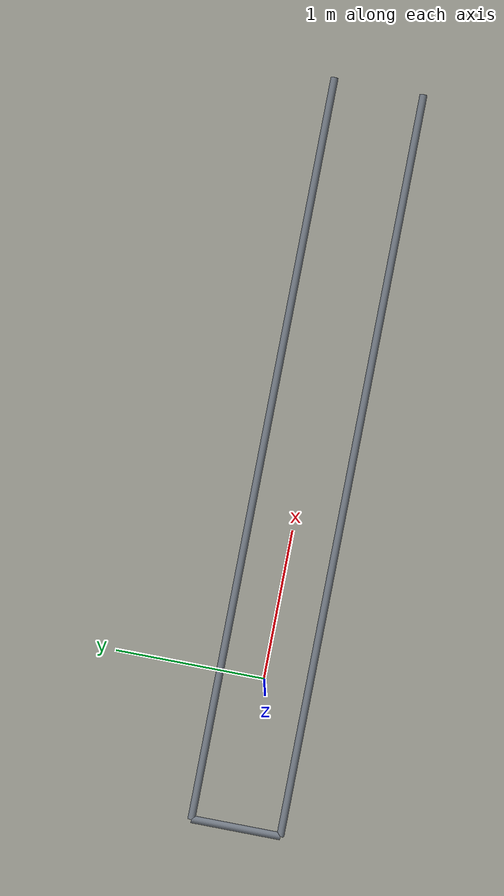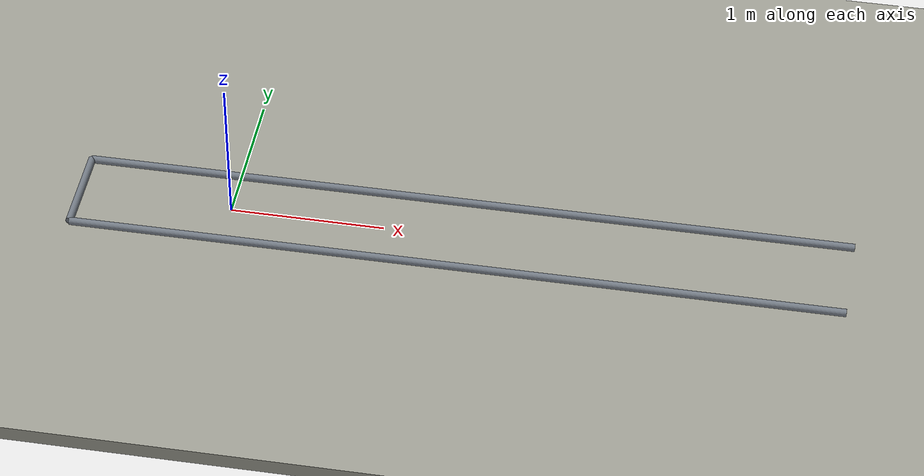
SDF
<?xml version="1.0"?>
<sdf version="1.6">
  <world name="u_rail_entry">
    <gravity>0 0 -9.80665</gravity>
    <physics name="ode_physics" default="1" type="ode">
      <max_step_size>0.001</max_step_size><real_time_factor>1.0</real_time_factor><real_time_update_rate>1000</real_time_update_rate>
      <ode><solver><type>quick</type><iters>100</iters><sor>1.3</sor></solver><constraints><cfm>0.0</cfm><erp>0.2</erp><contact_max_correcting_vel>0.08</contact_max_correcting_vel><contact_surface_layer>0.0005</contact_surface_layer></constraints></ode>
    </physics>
    <plugin name="gazebo_ros_state" filename="libgazebo_ros_state.so"><ros><namespace>/gazebo</namespace></ros><update_rate>50.0</update_rate></plugin>
    <model name="concrete_floor"><static>true</static><link name="floor_link">
      <collision name="floor_collision"><geometry><box><size>12 6 0.10</size></box></geometry><pose>0 0 -0.05 0 0 0</pose><surface><friction><ode><mu>1.2</mu><mu2>1.2</mu2></ode></friction></surface></collision>
      <visual name="floor_visual"><geometry><box><size>12 6 0.10</size></box></geometry><pose>0 0 -0.05 0 0 0</pose><material><ambient>0.55 0.55 0.52 1</ambient><diffuse>0.62 0.62 0.58 1</diffuse></material></visual>
    </link></model>
    <model name="left_rail"><static>true</static><pose>1.5 0.30 0.025 0 1.57079632679 0</pose><link name="rail_link">
      <collision name="rail_collision"><geometry><cylinder><radius>0.025</radius><length>5.0</length></cylinder></geometry><surface><friction><ode><mu>0.60</mu><mu2>20.0</mu2><fdir1>0 0 1</fdir1></ode></friction></surface></collision>
      <visual name="rail_visual"><geometry><cylinder><radius>0.025</radius><length>5.0</length></cylinder></geometry><material><ambient>0.28 0.30 0.32 1</ambient><diffuse>0.45 0.48 0.52 1</diffuse></material></visual>
    </link></model>
    <model name="right_rail"><static>true</static><pose>1.5 -0.30 0.025 0 1.57079632679 0</pose><link name="rail_link">
      <collision name="rail_collision"><geometry><cylinder><radius>0.025</radius><length>5.0</length></cylinder></geometry><surface><friction><ode><mu>0.60</mu><mu2>20.0</mu2><fdir1>0 0 1</fdir1></ode></friction></surface></collision>
      <visual name="rail_visual"><geometry><cylinder><radius>0.025</radius><length>5.0</length></cylinder></geometry><material><ambient>0.28 0.30 0.32 1</ambient><diffuse>0.45 0.48 0.52 1</diffuse></material></visual>
    </link></model>
    <!-- 实物图片中两根轨道在入口由同一根管道闭合。直横管是偏保守的碰撞近似，圆角 U 形端部留待后续视觉和机械精化。 -->
    <model name="u_end_cross_pipe"><static>true</static><pose>-1.0 0 0.025 1.57079632679 0 0</pose><link name="rail_link">
      <collision name="rail_collision"><geometry><cylinder><radius>0.025</radius><length>0.60</length></cylinder></geometry><surface><friction><ode><mu>0.60</mu><mu2>20.0</mu2><fdir1>0 0 1</fdir1></ode></friction></surface></collision>
      <visual name="rail_visual"><geometry><cylinder><radius>0.025</radius><length>0.60</length></cylinder></geometry><material><ambient>0.28 0.30 0.32 1</ambient><diffuse>0.45 0.48 0.52 1</diffuse></material></visual>
    </link></model>
    <include><uri>model://sun</uri></include>
  </world>
</sdf>
